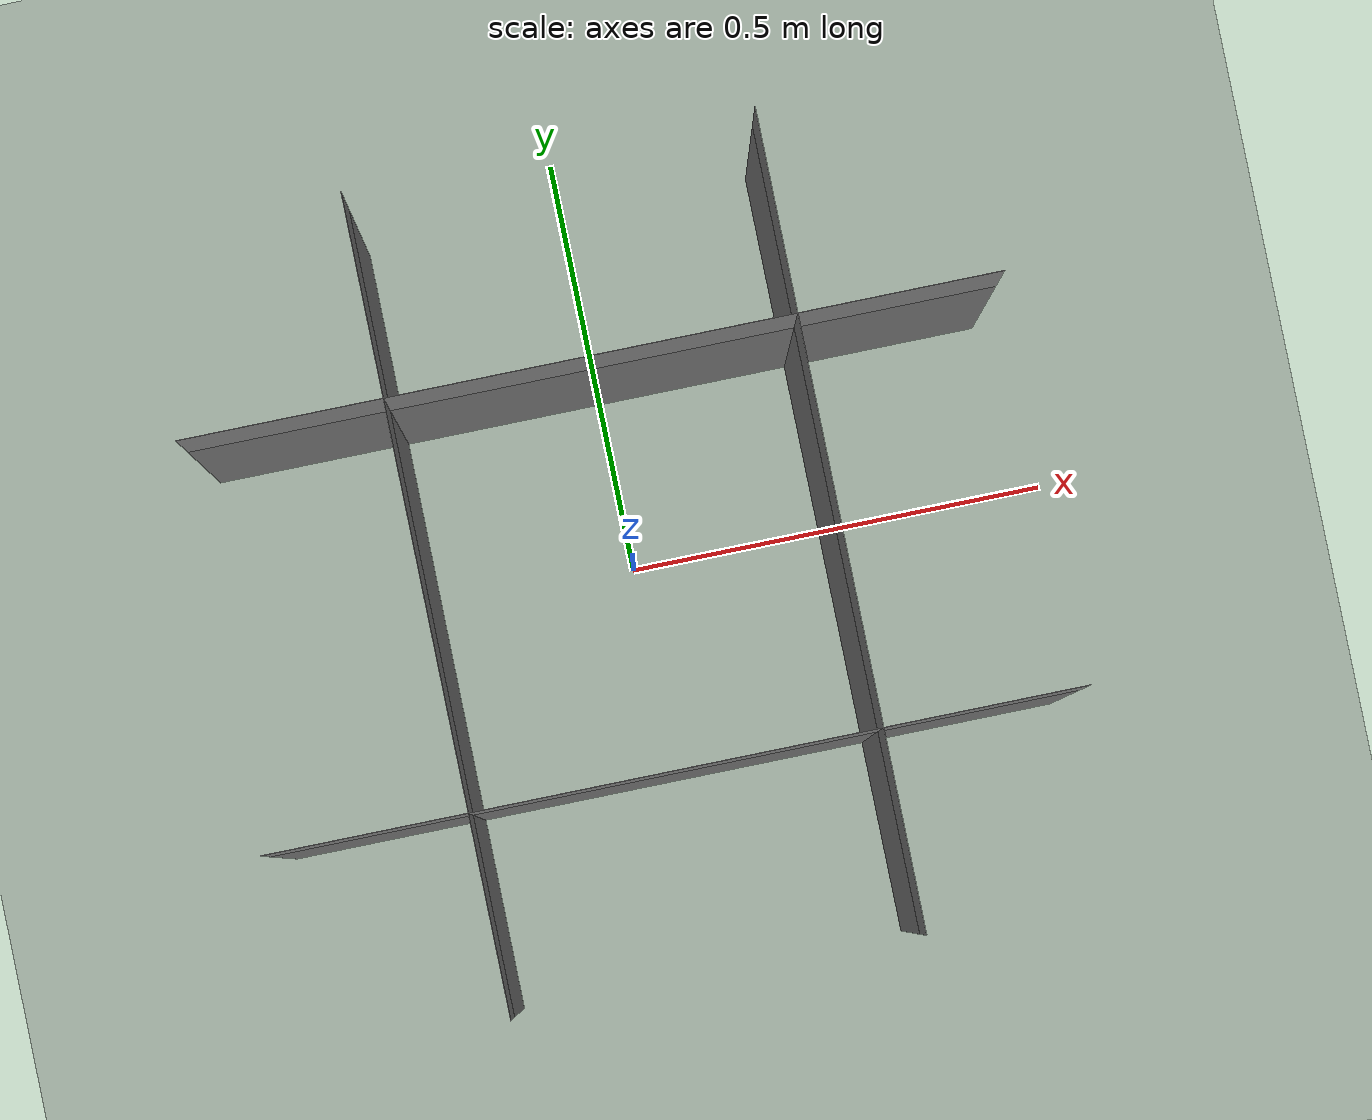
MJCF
<mujoco model="rocky_terrain_scene">

  <default>
    <default class="wall">
      <geom type="plane" size=".5 .5 .05" />
    </default>
  </default>

    <compiler angle="radian" inertiafromgeom="true" />
    <option timestep="0.002" gravity="0 0 -9.81" />

    <worldbody>

        <geom name="+x" class="wall" zaxis="1 0 0" pos="-.25 0 -.25" />
        <geom name="-x" class="wall" zaxis="-1 0 0" pos=".25 0 -.25" />
        <geom name="+y" class="wall" zaxis="0 1 0" pos="0 -.25 -.25" />
        <geom name="-y" class="wall" zaxis="0 -1 0" pos="0 .25 -.25" />

        <light name="sunlight" pos="5 5 5" dir="-1 -1 -1" diffuse="1 1 1" specular="0.5 0.5 0.5" ambient="0.5 0.5 0.5" />

        <geom name="ground_plane" type="plane" size="50 50 0.1" rgba="0.3 0.3 0.3 1" />

        <body name="rocky_terrain_body">

        </body>
    </worldbody>
</mujoco>
